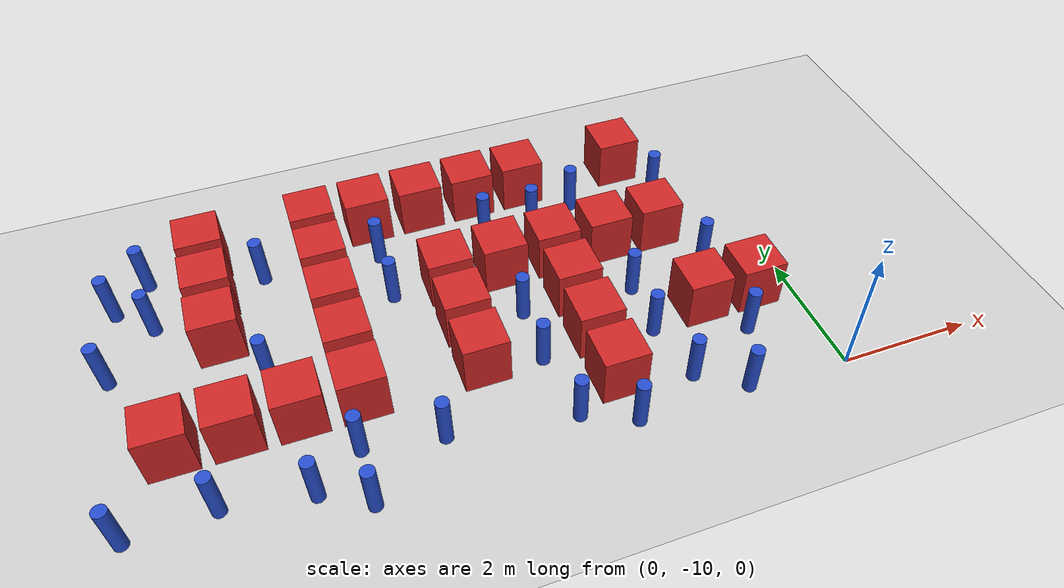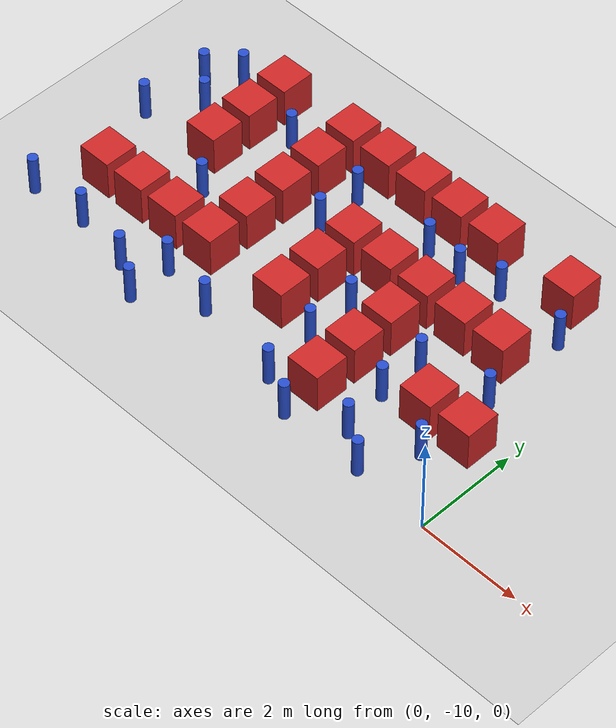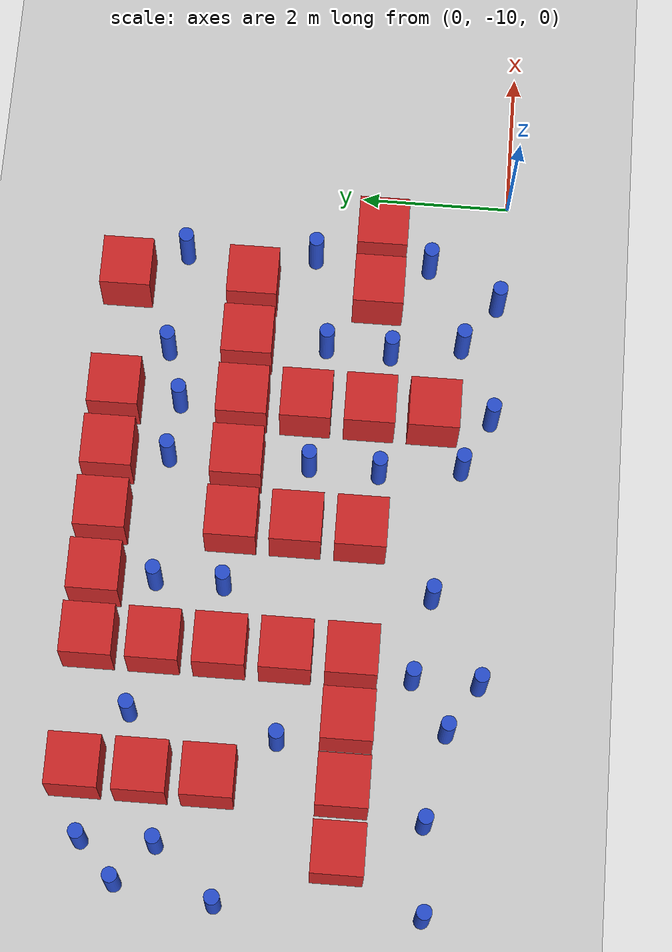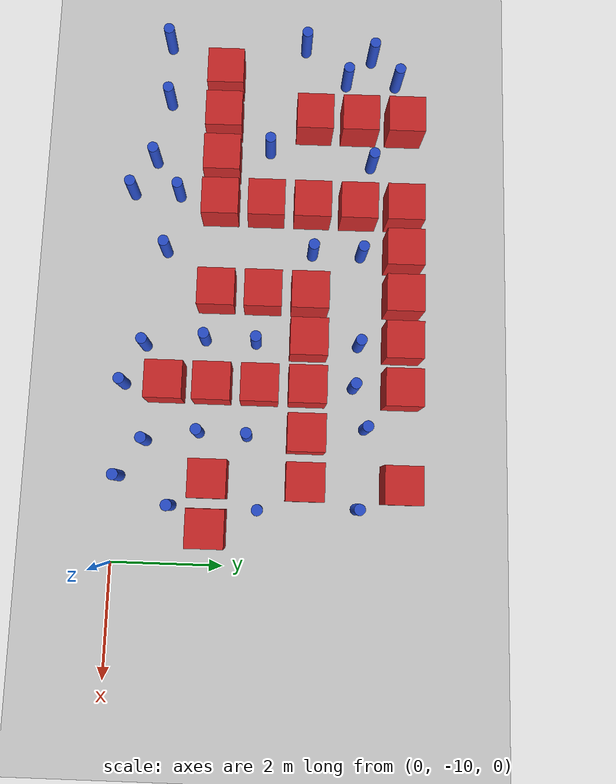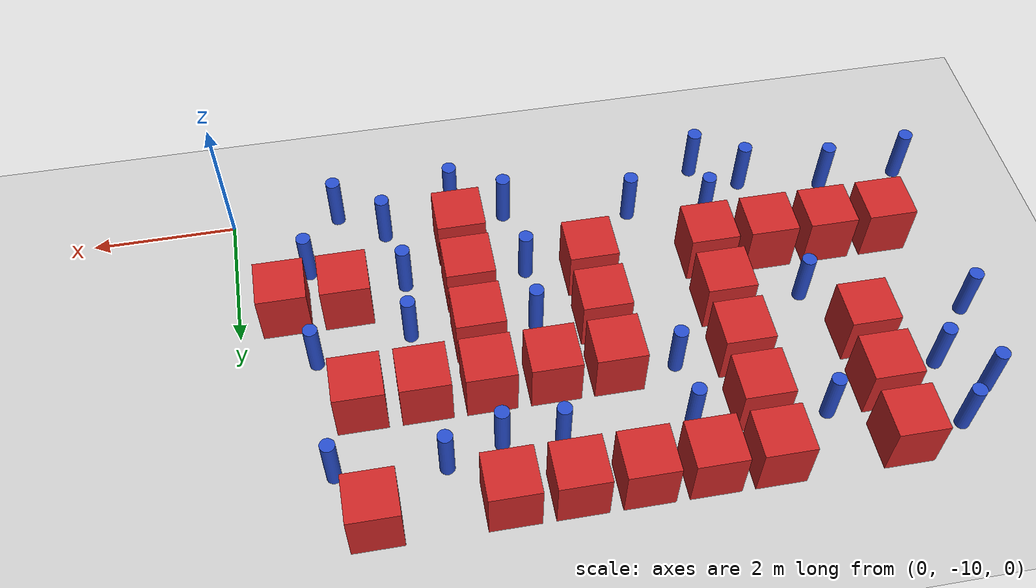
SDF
<sdf version="1.6">
 <world name="default">
  <model name="ground_plane">
   <static>1</static>
   <link name="link">
    <collision name="collision">
     <geometry><plane><normal>0 0 1</normal><size>100 100</size></plane></geometry>
     <surface><friction><ode><mu>100</mu><mu2>50</mu2></ode></friction></surface>
    </collision>
    <visual name="visual">
     <cast_shadows>0</cast_shadows>
     <geometry><plane><normal>0 0 1</normal><size>100 100</size></plane></geometry>
     <material>
      <script><uri>file://media/materials/scripts/gazebo.material</uri><name>Gazebo/Grey</name></script>
     </material>
    </visual>
   </link>
  </model>
  <model name="box_obstacle0">
   <static>0</static>
   <link name="link">
    <pose>0 0 0.1 0 -0 0</pose>
    <inertial>
     <mass>100</mass>
     <inertia>
      <ixx>0.166667</ixx>
      <ixy>0</ixy>
      <ixz>0</ixz>
      <iyy>0.166667</iyy>
      <iyz>0</iyz>
      <izz>0.166667</izz>
     </inertia>
    </inertial>
    <collision name="collision"><geometry><box><size>0.675 0.675 0.8</size></box></geometry></collision>
    <visual name="visual">
     <geometry><box><size>0.675 0.675 0.8</size></box></geometry>
     <material>
      <script><name>Gazebo/Red</name><uri>file://media/materials/scripts/gazebo.material</uri></script>
     </material>
    </visual>
   </link>
   <pose>-9.15097 -8.30135 0.299996 4e-06 -0 0.001125</pose>
  </model>
  <model name="box_obstacle2">
   <static>0</static>
   <link name="link">
    <pose>0 0 0.1 0 -0 0</pose>
    <inertial>
     <mass>100</mass>
     <inertia>
      <ixx>0.166667</ixx>
      <ixy>0</ixy>
      <ixz>0</ixz>
      <iyy>0.166667</iyy>
      <iyz>0</iyz>
      <izz>0.166667</izz>
     </inertia>
    </inertial>
    <collision name="collision"><geometry><box><size>0.675 0.675 0.8</size></box></geometry></collision>
    <visual name="visual">
     <geometry><box><size>0.675 0.675 0.8</size></box></geometry>
     <material>
      <script><name>Gazebo/Red</name><uri>file://media/materials/scripts/gazebo.material</uri></script>
     </material>
    </visual>
   </link>
   <pose>-8.30097 -8.30135 0.299996 4e-06 -0 0.001125</pose>
  </model>
  <model name="box_obstacle3">
   <static>0</static>
   <link name="link">
    <pose>0 0 0.1 0 -0 0</pose>
    <inertial>
     <mass>100</mass>
     <inertia>
      <ixx>0.166667</ixx>
      <ixy>0</ixy>
      <ixz>0</ixz>
      <iyy>0.166667</iyy>
      <iyz>0</iyz>
      <izz>0.166667</izz>
     </inertia>
    </inertial>
    <collision name="collision"><geometry><box><size>0.675 0.675 0.8</size></box></geometry></collision>
    <visual name="visual">
     <geometry><box><size>0.675 0.675 0.8</size></box></geometry>
     <material>
      <script><name>Gazebo/Red</name><uri>file://media/materials/scripts/gazebo.material</uri></script>
     </material>
    </visual>
   </link>
   <pose>-8.30097 -6.60135 0.299996 4e-06 -0 0.001125</pose>
  </model>
  <model name="box_obstacle4">
   <static>0</static>
   <link name="link">
    <pose>0 0 0.1 0 -0 0</pose>
    <inertial>
     <mass>100</mass>
     <inertia>
      <ixx>0.166667</ixx>
      <ixy>0</ixy>
      <ixz>0</ixz>
      <iyy>0.166667</iyy>
      <iyz>0</iyz>
      <izz>0.166667</izz>
     </inertia>
    </inertial>
    <collision name="collision"><geometry><box><size>0.675 0.675 0.8</size></box></geometry></collision>
    <visual name="visual">
     <geometry><box><size>0.675 0.675 0.8</size></box></geometry>
     <material>
      <script><name>Gazebo/Red</name><uri>file://media/materials/scripts/gazebo.material</uri></script>
     </material>
    </visual>
   </link>
   <pose>-8.30097 -5.75135 0.299996 4e-06 -0 0.001125</pose>
  </model>
  <model name="box_obstacle5">
   <static>0</static>
   <link name="link">
    <pose>0 0 0.1 0 -0 0</pose>
    <inertial>
     <mass>100</mass>
     <inertia>
      <ixx>0.166667</ixx>
      <ixy>0</ixy>
      <ixz>0</ixz>
      <iyy>0.166667</iyy>
      <iyz>0</iyz>
      <izz>0.166667</izz>
     </inertia>
    </inertial>
    <collision name="collision"><geometry><box><size>0.675 0.675 0.8</size></box></geometry></collision>
    <visual name="visual">
     <geometry><box><size>0.675 0.675 0.8</size></box></geometry>
     <material>
      <script><name>Gazebo/Red</name><uri>file://media/materials/scripts/gazebo.material</uri></script>
     </material>
    </visual>
   </link>
   <pose>-8.30097 -4.90135 0.299996 4e-06 -0 0.001125</pose>
  </model>
  <model name="box_obstacle19">
   <static>0</static>
   <link name="link">
    <pose>0 0 0.1 0 -0 0</pose>
    <inertial>
     <mass>100</mass>
     <inertia>
      <ixx>0.166667</ixx>
      <ixy>0</ixy>
      <ixz>0</ixz>
      <iyy>0.166667</iyy>
      <iyz>0</iyz>
      <izz>0.166667</izz>
     </inertia>
    </inertial>
    <collision name="collision"><geometry><box><size>0.675 0.675 0.8</size></box></geometry></collision>
    <visual name="visual">
     <geometry><box><size>0.675 0.675 0.8</size></box></geometry>
     <material>
      <script><name>Gazebo/Red</name><uri>file://media/materials/scripts/gazebo.material</uri></script>
     </material>
    </visual>
   </link>
   <pose>-7.45097 -8.30135 0.299996 4e-06 -0 0.001125</pose>
  </model>
  <model name="box_obstacle24">
   <static>0</static>
   <link name="link">
    <pose>0 0 0.1 0 -0 0</pose>
    <inertial>
     <mass>100</mass>
     <inertia>
      <ixx>0.166667</ixx>
      <ixy>0</ixy>
      <ixz>0</ixz>
      <iyy>0.166667</iyy>
      <iyz>0</iyz>
      <izz>0.166667</izz>
     </inertia>
    </inertial>
    <collision name="collision"><geometry><box><size>0.675 0.675 0.8</size></box></geometry></collision>
    <visual name="visual">
     <geometry><box><size>0.675 0.675 0.8</size></box></geometry>
     <material>
      <script><name>Gazebo/Red</name><uri>file://media/materials/scripts/gazebo.material</uri></script>
     </material>
    </visual>
   </link>
   <pose>-6.60097 -8.30135 0.299996 4e-06 -0 0.001125</pose>
  </model>
  <model name="box_obstacle25">
   <static>0</static>
   <link name="link">
    <pose>0 0 0.1 0 -0 0</pose>
    <inertial>
     <mass>100</mass>
     <inertia>
      <ixx>0.166667</ixx>
      <ixy>0</ixy>
      <ixz>0</ixz>
      <iyy>0.166667</iyy>
      <iyz>0</iyz>
      <izz>0.166667</izz>
     </inertia>
    </inertial>
    <collision name="collision"><geometry><box><size>0.675 0.675 0.8</size></box></geometry></collision>
    <visual name="visual">
     <geometry><box><size>0.675 0.675 0.8</size></box></geometry>
     <material>
      <script><name>Gazebo/Red</name><uri>file://media/materials/scripts/gazebo.material</uri></script>
     </material>
    </visual>
   </link>
   <pose>-6.60097 -7.45135 0.299996 4e-06 -0 0.001125</pose>
  </model>
  <model name="box_obstacle26">
   <static>0</static>
   <link name="link">
    <pose>0 0 0.1 0 -0 0</pose>
    <inertial>
     <mass>100</mass>
     <inertia>
      <ixx>0.166667</ixx>
      <ixy>0</ixy>
      <ixz>0</ixz>
      <iyy>0.166667</iyy>
      <iyz>0</iyz>
      <izz>0.166667</izz>
     </inertia>
    </inertial>
    <collision name="collision"><geometry><box><size>0.675 0.675 0.8</size></box></geometry></collision>
    <visual name="visual">
     <geometry><box><size>0.675 0.675 0.8</size></box></geometry>
     <material>
      <script><name>Gazebo/Red</name><uri>file://media/materials/scripts/gazebo.material</uri></script>
     </material>
    </visual>
   </link>
   <pose>-6.60097 -6.60135 0.299996 4e-06 -0 0.001125</pose>
  </model>
  <model name="box_obstacle27">
   <static>0</static>
   <link name="link">
    <pose>0 0 0.1 0 -0 0</pose>
    <inertial>
     <mass>100</mass>
     <inertia>
      <ixx>0.166667</ixx>
      <ixy>0</ixy>
      <ixz>0</ixz>
      <iyy>0.166667</iyy>
      <iyz>0</iyz>
      <izz>0.166667</izz>
     </inertia>
    </inertial>
    <collision name="collision"><geometry><box><size>0.675 0.675 0.8</size></box></geometry></collision>
    <visual name="visual">
     <geometry><box><size>0.675 0.675 0.8</size></box></geometry>
     <material>
      <script><name>Gazebo/Red</name><uri>file://media/materials/scripts/gazebo.material</uri></script>
     </material>
    </visual>
   </link>
   <pose>-6.60097 -5.75135 0.299996 4e-06 -0 0.001125</pose>
  </model>
  <model name="box_obstacle28">
   <static>0</static>
   <link name="link">
    <pose>0 0 0.1 0 -0 0</pose>
    <inertial>
     <mass>100</mass>
     <inertia>
      <ixx>0.166667</ixx>
      <ixy>0</ixy>
      <ixz>0</ixz>
      <iyy>0.166667</iyy>
      <iyz>0</iyz>
      <izz>0.166667</izz>
     </inertia>
    </inertial>
    <collision name="collision"><geometry><box><size>0.675 0.675 0.8</size></box></geometry></collision>
    <visual name="visual">
     <geometry><box><size>0.675 0.675 0.8</size></box></geometry>
     <material>
      <script><name>Gazebo/Red</name><uri>file://media/materials/scripts/gazebo.material</uri></script>
     </material>
    </visual>
   </link>
   <pose>-6.60097 -4.90135 0.299996 4e-06 -0 0.001125</pose>
  </model>
  <model name="box_obstacle42">
   <static>0</static>
   <link name="link">
    <pose>0 0 0.1 0 -0 0</pose>
    <inertial>
     <mass>100</mass>
     <inertia>
      <ixx>0.166667</ixx>
      <ixy>0</ixy>
      <ixz>0</ixz>
      <iyy>0.166667</iyy>
      <iyz>0</iyz>
      <izz>0.166667</izz>
     </inertia>
    </inertial>
    <collision name="collision"><geometry><box><size>0.675 0.675 0.8</size></box></geometry></collision>
    <visual name="visual">
     <geometry><box><size>0.675 0.675 0.8</size></box></geometry>
     <material>
      <script><name>Gazebo/Red</name><uri>file://media/materials/scripts/gazebo.material</uri></script>
     </material>
    </visual>
   </link>
   <pose>-5.75097 -4.90135 0.299996 4e-06 -0 0.001125</pose>
  </model>
  <model name="box_obstacle45">
   <static>0</static>
   <link name="link">
    <pose>0 0 0.1 0 -0 0</pose>
    <inertial>
     <mass>100</mass>
     <inertia>
      <ixx>0.166667</ixx>
      <ixy>0</ixy>
      <ixz>0</ixz>
      <iyy>0.166667</iyy>
      <iyz>0</iyz>
      <izz>0.166667</izz>
     </inertia>
    </inertial>
    <collision name="collision"><geometry><box><size>0.675 0.675 0.8</size></box></geometry></collision>
    <visual name="visual">
     <geometry><box><size>0.675 0.675 0.8</size></box></geometry>
     <material>
      <script><name>Gazebo/Red</name><uri>file://media/materials/scripts/gazebo.material</uri></script>
     </material>
    </visual>
   </link>
   <pose>-4.90097 -8.30135 0.299996 4e-06 -0 0.001125</pose>
  </model>
  <model name="box_obstacle46">
   <static>0</static>
   <link name="link">
    <pose>0 0 0.1 0 -0 0</pose>
    <inertial>
     <mass>100</mass>
     <inertia>
      <ixx>0.166667</ixx>
      <ixy>0</ixy>
      <ixz>0</ixz>
      <iyy>0.166667</iyy>
      <iyz>0</iyz>
      <izz>0.166667</izz>
     </inertia>
    </inertial>
    <collision name="collision"><geometry><box><size>0.675 0.675 0.8</size></box></geometry></collision>
    <visual name="visual">
     <geometry><box><size>0.675 0.675 0.8</size></box></geometry>
     <material>
      <script><name>Gazebo/Red</name><uri>file://media/materials/scripts/gazebo.material</uri></script>
     </material>
    </visual>
   </link>
   <pose>-4.90097 -7.45135 0.299996 4e-06 -0 0.001125</pose>
  </model>
  <model name="box_obstacle47">
   <static>0</static>
   <link name="link">
    <pose>0 0 0.1 0 -0 0</pose>
    <inertial>
     <mass>100</mass>
     <inertia>
      <ixx>0.166667</ixx>
      <ixy>0</ixy>
      <ixz>0</ixz>
      <iyy>0.166667</iyy>
      <iyz>0</iyz>
      <izz>0.166667</izz>
     </inertia>
    </inertial>
    <collision name="collision"><geometry><box><size>0.675 0.675 0.8</size></box></geometry></collision>
    <visual name="visual">
     <geometry><box><size>0.675 0.675 0.8</size></box></geometry>
     <material>
      <script><name>Gazebo/Red</name><uri>file://media/materials/scripts/gazebo.material</uri></script>
     </material>
    </visual>
   </link>
   <pose>-4.90097 -6.60135 0.299996 4e-06 -0 0.001125</pose>
  </model>
  <model name="box_obstacle48">
   <static>0</static>
   <link name="link">
    <pose>0 0 0.1 0 -0 0</pose>
    <inertial>
     <mass>100</mass>
     <inertia>
      <ixx>0.166667</ixx>
      <ixy>0</ixy>
      <ixz>0</ixz>
      <iyy>0.166667</iyy>
      <iyz>0</iyz>
      <izz>0.166667</izz>
     </inertia>
    </inertial>
    <collision name="collision"><geometry><box><size>0.675 0.675 0.8</size></box></geometry></collision>
    <visual name="visual">
     <geometry><box><size>0.675 0.675 0.8</size></box></geometry>
     <material>
      <script><name>Gazebo/Red</name><uri>file://media/materials/scripts/gazebo.material</uri></script>
     </material>
    </visual>
   </link>
   <pose>-4.90097 -4.90135 0.299996 4e-06 -0 0.001125</pose>
  </model>
  <model name="box_obstacle63">
   <static>0</static>
   <link name="link">
    <pose>0 0 0.1 0 -0 0</pose>
    <inertial>
     <mass>100</mass>
     <inertia>
      <ixx>0.166667</ixx>
      <ixy>0</ixy>
      <ixz>0</ixz>
      <iyy>0.166667</iyy>
      <iyz>0</iyz>
      <izz>0.166667</izz>
     </inertia>
    </inertial>
    <collision name="collision"><geometry><box><size>0.675 0.675 0.8</size></box></geometry></collision>
    <visual name="visual">
     <geometry><box><size>0.675 0.675 0.8</size></box></geometry>
     <material>
      <script><name>Gazebo/Red</name><uri>file://media/materials/scripts/gazebo.material</uri></script>
     </material>
    </visual>
   </link>
   <pose>-4.05097 -6.60135 0.299996 4e-06 -0 0.001125</pose>
  </model>
  <model name="box_obstacle64">
   <static>0</static>
   <link name="link">
    <pose>0 0 0.1 0 -0 0</pose>
    <inertial>
     <mass>100</mass>
     <inertia>
      <ixx>0.166667</ixx>
      <ixy>0</ixy>
      <ixz>0</ixz>
      <iyy>0.166667</iyy>
      <iyz>0</iyz>
      <izz>0.166667</izz>
     </inertia>
    </inertial>
    <collision name="collision"><geometry><box><size>0.675 0.675 0.8</size></box></geometry></collision>
    <visual name="visual">
     <geometry><box><size>0.675 0.675 0.8</size></box></geometry>
     <material>
      <script><name>Gazebo/Red</name><uri>file://media/materials/scripts/gazebo.material</uri></script>
     </material>
    </visual>
   </link>
   <pose>-4.05097 -4.90135 0.299996 4e-06 -0 0.001125</pose>
  </model>
  <model name="box_obstacle68">
   <static>0</static>
   <link name="link">
    <pose>0 0 0.1 0 -0 0</pose>
    <inertial>
     <mass>100</mass>
     <inertia>
      <ixx>0.166667</ixx>
      <ixy>0</ixy>
      <ixz>0</ixz>
      <iyy>0.166667</iyy>
      <iyz>0</iyz>
      <izz>0.166667</izz>
     </inertia>
    </inertial>
    <collision name="collision"><geometry><box><size>0.675 0.675 0.8</size></box></geometry></collision>
    <visual name="visual">
     <geometry><box><size>0.675 0.675 0.8</size></box></geometry>
     <material>
      <script><name>Gazebo/Red</name><uri>file://media/materials/scripts/gazebo.material</uri></script>
     </material>
    </visual>
   </link>
   <pose>-3.20097 -9.15135 0.299996 4e-06 -0 0.001125</pose>
  </model>
  <model name="box_obstacle69">
   <static>0</static>
   <link name="link">
    <pose>0 0 0.1 0 -0 0</pose>
    <inertial>
     <mass>100</mass>
     <inertia>
      <ixx>0.166667</ixx>
      <ixy>0</ixy>
      <ixz>0</ixz>
      <iyy>0.166667</iyy>
      <iyz>0</iyz>
      <izz>0.166667</izz>
     </inertia>
    </inertial>
    <collision name="collision"><geometry><box><size>0.675 0.675 0.8</size></box></geometry></collision>
    <visual name="visual">
     <geometry><box><size>0.675 0.675 0.8</size></box></geometry>
     <material>
      <script><name>Gazebo/Red</name><uri>file://media/materials/scripts/gazebo.material</uri></script>
     </material>
    </visual>
   </link>
   <pose>-3.20097 -8.30135 0.299996 4e-06 -0 0.001125</pose>
  </model>
  <model name="box_obstacle70">
   <static>0</static>
   <link name="link">
    <pose>0 0 0.1 0 -0 0</pose>
    <inertial>
     <mass>100</mass>
     <inertia>
      <ixx>0.166667</ixx>
      <ixy>0</ixy>
      <ixz>0</ixz>
      <iyy>0.166667</iyy>
      <iyz>0</iyz>
      <izz>0.166667</izz>
     </inertia>
    </inertial>
    <collision name="collision"><geometry><box><size>0.675 0.675 0.8</size></box></geometry></collision>
    <visual name="visual">
     <geometry><box><size>0.675 0.675 0.8</size></box></geometry>
     <material>
      <script><name>Gazebo/Red</name><uri>file://media/materials/scripts/gazebo.material</uri></script>
     </material>
    </visual>
   </link>
   <pose>-3.20097 -7.45135 0.299996 4e-06 -0 0.001125</pose>
  </model>
  <model name="box_obstacle71">
   <static>0</static>
   <link name="link">
    <pose>0 0 0.1 0 -0 0</pose>
    <inertial>
     <mass>100</mass>
     <inertia>
      <ixx>0.166667</ixx>
      <ixy>0</ixy>
      <ixz>0</ixz>
      <iyy>0.166667</iyy>
      <iyz>0</iyz>
      <izz>0.166667</izz>
     </inertia>
    </inertial>
    <collision name="collision"><geometry><box><size>0.675 0.675 0.8</size></box></geometry></collision>
    <visual name="visual">
     <geometry><box><size>0.675 0.675 0.8</size></box></geometry>
     <material>
      <script><name>Gazebo/Red</name><uri>file://media/materials/scripts/gazebo.material</uri></script>
     </material>
    </visual>
   </link>
   <pose>-3.20097 -6.60135 0.299996 4e-06 -0 0.001125</pose>
  </model>
  <model name="box_obstacle72">
   <static>0</static>
   <link name="link">
    <pose>0 0 0.1 0 -0 0</pose>
    <inertial>
     <mass>100</mass>
     <inertia>
      <ixx>0.166667</ixx>
      <ixy>0</ixy>
      <ixz>0</ixz>
      <iyy>0.166667</iyy>
      <iyz>0</iyz>
      <izz>0.166667</izz>
     </inertia>
    </inertial>
    <collision name="collision"><geometry><box><size>0.675 0.675 0.8</size></box></geometry></collision>
    <visual name="visual">
     <geometry><box><size>0.675 0.675 0.8</size></box></geometry>
     <material>
      <script><name>Gazebo/Red</name><uri>file://media/materials/scripts/gazebo.material</uri></script>
     </material>
    </visual>
   </link>
   <pose>-3.20097 -4.90135 0.299996 4e-06 -0 0.001125</pose>
  </model>
  <model name="box_obstacle85">
   <static>0</static>
   <link name="link">
    <pose>0 0 0.1 0 -0 0</pose>
    <inertial>
     <mass>100</mass>
     <inertia>
      <ixx>0.166667</ixx>
      <ixy>0</ixy>
      <ixz>0</ixz>
      <iyy>0.166667</iyy>
      <iyz>0</iyz>
      <izz>0.166667</izz>
     </inertia>
    </inertial>
    <collision name="collision"><geometry><box><size>0.675 0.675 0.8</size></box></geometry></collision>
    <visual name="visual">
     <geometry><box><size>0.675 0.675 0.8</size></box></geometry>
     <material>
      <script><name>Gazebo/Red</name><uri>file://media/materials/scripts/gazebo.material</uri></script>
     </material>
    </visual>
   </link>
   <pose>-2.35097 -6.60135 0.299996 4e-06 -0 0.001125</pose>
  </model>
  <model name="box_obstacle91">
   <static>0</static>
   <link name="link">
    <pose>0 0 0.1 0 -0 0</pose>
    <inertial>
     <mass>100</mass>
     <inertia>
      <ixx>0.166667</ixx>
      <ixy>0</ixy>
      <ixz>0</ixz>
      <iyy>0.166667</iyy>
      <iyz>0</iyz>
      <izz>0.166667</izz>
     </inertia>
    </inertial>
    <collision name="collision"><geometry><box><size>0.675 0.675 0.8</size></box></geometry></collision>
    <visual name="visual">
     <geometry><box><size>0.675 0.675 0.8</size></box></geometry>
     <material>
      <script><name>Gazebo/Red</name><uri>file://media/materials/scripts/gazebo.material</uri></script>
     </material>
    </visual>
   </link>
   <pose>-1.50097 -8.30135 0.299996 4e-06 -0 0.001125</pose>
  </model>
  <model name="box_obstacle92">
   <static>0</static>
   <link name="link">
    <pose>0 0 0.1 0 -0 0</pose>
    <inertial>
     <mass>100</mass>
     <inertia>
      <ixx>0.166667</ixx>
      <ixy>0</ixy>
      <ixz>0</ixz>
      <iyy>0.166667</iyy>
      <iyz>0</iyz>
      <izz>0.166667</izz>
     </inertia>
    </inertial>
    <collision name="collision"><geometry><box><size>0.675 0.675 0.8</size></box></geometry></collision>
    <visual name="visual">
     <geometry><box><size>0.675 0.675 0.8</size></box></geometry>
     <material>
      <script><name>Gazebo/Red</name><uri>file://media/materials/scripts/gazebo.material</uri></script>
     </material>
    </visual>
   </link>
   <pose>-1.50097 -6.60135 0.299996 4e-06 -0 0.001125</pose>
  </model>
  <model name="box_obstacle93">
   <static>0</static>
   <link name="link">
    <pose>0 0 0.1 0 -0 0</pose>
    <inertial>
     <mass>100</mass>
     <inertia>
      <ixx>0.166667</ixx>
      <ixy>0</ixy>
      <ixz>0</ixz>
      <iyy>0.166667</iyy>
      <iyz>0</iyz>
      <izz>0.166667</izz>
     </inertia>
    </inertial>
    <collision name="collision"><geometry><box><size>0.675 0.675 0.8</size></box></geometry></collision>
    <visual name="visual">
     <geometry><box><size>0.675 0.675 0.8</size></box></geometry>
     <material>
      <script><name>Gazebo/Red</name><uri>file://media/materials/scripts/gazebo.material</uri></script>
     </material>
    </visual>
   </link>
   <pose>-1.50097 -4.90135 0.299996 4e-06 -0 0.001125</pose>
  </model>
  <model name="box_obstacle106">
   <static>0</static>
   <link name="link">
    <pose>0 0 0.1 0 -0 0</pose>
    <inertial>
     <mass>100</mass>
     <inertia>
      <ixx>0.166667</ixx>
      <ixy>0</ixy>
      <ixz>0</ixz>
      <iyy>0.166667</iyy>
      <iyz>0</iyz>
      <izz>0.166667</izz>
     </inertia>
    </inertial>
    <collision name="collision"><geometry><box><size>0.675 0.675 0.8</size></box></geometry></collision>
    <visual name="visual">
     <geometry><box><size>0.675 0.675 0.8</size></box></geometry>
     <material>
      <script><name>Gazebo/Red</name><uri>file://media/materials/scripts/gazebo.material</uri></script>
     </material>
    </visual>
   </link>
   <pose>-0.65097 -8.30135 0.299996 4e-06 -0 0.001125</pose>
  </model>
  <model name="cylinder_obstacle0">
   <static>0</static>
   <link name="link">
    <pose>0 0 1 0 -0 0</pose>
    <inertial>
     <mass>100</mass>
     <inertia>
      <ixx>0.166667</ixx>
      <ixy>0</ixy>
      <ixz>0</ixz>
      <iyy>0.166667</iyy>
      <iyz>0</iyz>
      <izz>0.166667</izz>
     </inertia>
    </inertial>
    <collision name="collision">
     <geometry><cylinder><radius>0.1</radius><length>0.8</length></cylinder></geometry>
    </collision>
    <visual name="visual">
     <geometry><cylinder><radius>0.1</radius><length>0.8</length></cylinder></geometry>
     <material>
      <script><name>Gazebo/Blue</name><uri>file://media/materials/scripts/gazebo.material</uri></script>
     </material>
    </visual>
   </link>
   <pose>-9.70214 -5.51207 -0.6 3e-06 1e-06 -0.005521</pose>
  </model>
  <model name="cylinder_obstacle3">
   <static>0</static>
   <link name="link">
    <pose>0 0 1 0 -0 0</pose>
    <inertial>
     <mass>100</mass>
     <inertia>
      <ixx>0.166667</ixx>
      <ixy>0</ixy>
      <ixz>0</ixz>
      <iyy>0.166667</iyy>
      <iyz>0</iyz>
      <izz>0.166667</izz>
     </inertia>
    </inertial>
    <collision name="collision">
     <geometry><cylinder><radius>0.1</radius><length>0.8</length></cylinder></geometry>
    </collision>
    <visual name="visual">
     <geometry><cylinder><radius>0.1</radius><length>0.8</length></cylinder></geometry>
     <material>
      <script><name>Gazebo/Blue</name><uri>file://media/materials/scripts/gazebo.material</uri></script>
     </material>
    </visual>
   </link>
   <pose>-3.90748 -9.57105 -0.6 3e-06 1e-06 0.002375</pose>
  </model>
  <model name="cylinder_obstacle7">
   <static>0</static>
   <link name="link">
    <pose>0 0 1 0 -0 0</pose>
    <inertial>
     <mass>100</mass>
     <inertia>
      <ixx>0.166667</ixx>
      <ixy>0</ixy>
      <ixz>0</ixz>
      <iyy>0.166667</iyy>
      <iyz>0</iyz>
      <izz>0.166667</izz>
     </inertia>
    </inertial>
    <collision name="collision">
     <geometry><cylinder><radius>0.1</radius><length>0.8</length></cylinder></geometry>
    </collision>
    <visual name="visual">
     <geometry><cylinder><radius>0.1</radius><length>0.8</length></cylinder></geometry>
     <material>
      <script><name>Gazebo/Blue</name><uri>file://media/materials/scripts/gazebo.material</uri></script>
     </material>
    </visual>
   </link>
   <pose>-7.51294 -5.49536 -0.6 3e-06 1e-06 0.003884</pose>
  </model>
  <model name="cylinder_obstacle10">
   <static>0</static>
   <link name="link">
    <pose>0 0 1 0 -0 0</pose>
    <inertial>
     <mass>100</mass>
     <inertia>
      <ixx>0.166667</ixx>
      <ixy>0</ixy>
      <ixz>0</ixz>
      <iyy>0.166667</iyy>
      <iyz>0</iyz>
      <izz>0.166667</izz>
     </inertia>
    </inertial>
    <collision name="collision">
     <geometry><cylinder><radius>0.1</radius><length>0.8</length></cylinder></geometry>
    </collision>
    <visual name="visual">
     <geometry><cylinder><radius>0.1</radius><length>0.8</length></cylinder></geometry>
     <material>
      <script><name>Gazebo/Blue</name><uri>file://media/materials/scripts/gazebo.material</uri></script>
     </material>
    </visual>
   </link>
   <pose>-9.85785 -9.40711 -0.6 3e-06 1e-06 0.003884</pose>
  </model>
  <model name="cylinder_obstacle11">
   <static>0</static>
   <link name="link">
    <pose>0 0 1 0 -0 0</pose>
    <inertial>
     <mass>100</mass>
     <inertia>
      <ixx>0.166667</ixx>
      <ixy>0</ixy>
      <ixz>0</ixz>
      <iyy>0.166667</iyy>
      <iyz>0</iyz>
      <izz>0.166667</izz>
     </inertia>
    </inertial>
    <collision name="collision">
     <geometry><cylinder><radius>0.1</radius><length>0.8</length></cylinder></geometry>
    </collision>
    <visual name="visual">
     <geometry><cylinder><radius>0.1</radius><length>0.8</length></cylinder></geometry>
     <material>
      <script><name>Gazebo/Blue</name><uri>file://media/materials/scripts/gazebo.material</uri></script>
     </material>
    </visual>
   </link>
   <pose>-5.73428 -5.66202 -0.6 3e-06 1e-06 0.003884</pose>
  </model>
  <model name="cylinder_obstacle13">
   <static>0</static>
   <link name="link">
    <pose>0 0 1 0 -0 0</pose>
    <inertial>
     <mass>100</mass>
     <inertia>
      <ixx>0.166667</ixx>
      <ixy>0</ixy>
      <ixz>0</ixz>
      <iyy>0.166667</iyy>
      <iyz>0</iyz>
      <izz>0.166667</izz>
     </inertia>
    </inertial>
    <collision name="collision">
     <geometry><cylinder><radius>0.1</radius><length>0.8</length></cylinder></geometry>
    </collision>
    <visual name="visual">
     <geometry><cylinder><radius>0.1</radius><length>0.8</length></cylinder></geometry>
     <material>
      <script><name>Gazebo/Blue</name><uri>file://media/materials/scripts/gazebo.material</uri></script>
     </material>
    </visual>
   </link>
   <pose>-8.67734 -9.35783 -0.6 3e-06 1e-06 0.003884</pose>
  </model>
  <model name="cylinder_obstacle17">
   <static>0</static>
   <link name="link">
    <pose>0 0 1 0 -0 0</pose>
    <inertial>
     <mass>100</mass>
     <inertia>
      <ixx>0.166667</ixx>
      <ixy>0</ixy>
      <ixz>0</ixz>
      <iyy>0.166667</iyy>
      <iyz>0</iyz>
      <izz>0.166667</izz>
     </inertia>
    </inertial>
    <collision name="collision">
     <geometry><cylinder><radius>0.1</radius><length>0.8</length></cylinder></geometry>
    </collision>
    <visual name="visual">
     <geometry><cylinder><radius>0.1</radius><length>0.8</length></cylinder></geometry>
     <material>
      <script><name>Gazebo/Blue</name><uri>file://media/materials/scripts/gazebo.material</uri></script>
     </material>
    </visual>
   </link>
   <pose>-5.73724 -6.56105 -0.6 3e-06 1e-06 0.003884</pose>
  </model>
  <model name="cylinder_obstacle18">
   <static>0</static>
   <link name="link">
    <pose>0 0 1 0 -0 0</pose>
    <inertial>
     <mass>100</mass>
     <inertia>
      <ixx>0.166667</ixx>
      <ixy>0</ixy>
      <ixz>0</ixz>
      <iyy>0.166667</iyy>
      <iyz>0</iyz>
      <izz>0.166667</izz>
     </inertia>
    </inertial>
    <collision name="collision">
     <geometry><cylinder><radius>0.1</radius><length>0.8</length></cylinder></geometry>
    </collision>
    <visual name="visual">
     <geometry><cylinder><radius>0.1</radius><length>0.8</length></cylinder></geometry>
     <material>
      <script><name>Gazebo/Blue</name><uri>file://media/materials/scripts/gazebo.material</uri></script>
     </material>
    </visual>
   </link>
   <pose>-7.48011 -9.57381 -0.6 3e-06 1e-06 -0.001107</pose>
  </model>
  <model name="cylinder_obstacle24">
   <static>0</static>
   <link name="link">
    <pose>0 0 1 0 -0 0</pose>
    <inertial>
     <mass>100</mass>
     <inertia>
      <ixx>0.166667</ixx>
      <ixy>0</ixy>
      <ixz>0</ixz>
      <iyy>0.166667</iyy>
      <iyz>0</iyz>
      <izz>0.166667</izz>
     </inertia>
    </inertial>
    <collision name="collision">
     <geometry><cylinder><radius>0.1</radius><length>0.8</length></cylinder></geometry>
    </collision>
    <visual name="visual">
     <geometry><cylinder><radius>0.1</radius><length>0.8</length></cylinder></geometry>
     <material>
      <script><name>Gazebo/Blue</name><uri>file://media/materials/scripts/gazebo.material</uri></script>
     </material>
    </visual>
   </link>
   <pose>-2.16303 -9.47996 -0.6 3e-06 1e-06 0.003884</pose>
  </model>
  <model name="cylinder_obstacle27">
   <static>0</static>
   <link name="link">
    <pose>0 0 1 0 -0 0</pose>
    <inertial>
     <mass>100</mass>
     <inertia>
      <ixx>0.166667</ixx>
      <ixy>0</ixy>
      <ixz>0</ixz>
      <iyy>0.166667</iyy>
      <iyz>0</iyz>
      <izz>0.166667</izz>
     </inertia>
    </inertial>
    <collision name="collision">
     <geometry><cylinder><radius>0.1</radius><length>0.8</length></cylinder></geometry>
    </collision>
    <visual name="visual">
     <geometry><cylinder><radius>0.1</radius><length>0.8</length></cylinder></geometry>
     <material>
      <script><name>Gazebo/Blue</name><uri>file://media/materials/scripts/gazebo.material</uri></script>
     </material>
    </visual>
   </link>
   <pose>-9.18516 -5.99322 -0.6 3e-06 1e-06 0.003884</pose>
  </model>
  <model name="cylinder_obstacle30">
   <static>0</static>
   <link name="link">
    <pose>0 0 1 0 -0 0</pose>
    <inertial>
     <mass>100</mass>
     <inertia>
      <ixx>0.166667</ixx>
      <ixy>0</ixy>
      <ixz>0</ixz>
      <iyy>0.166667</iyy>
      <iyz>0</iyz>
      <izz>0.166667</izz>
     </inertia>
    </inertial>
    <collision name="collision">
     <geometry><cylinder><radius>0.1</radius><length>0.8</length></cylinder></geometry>
    </collision>
    <visual name="visual">
     <geometry><cylinder><radius>0.1</radius><length>0.8</length></cylinder></geometry>
     <material>
      <script><name>Gazebo/Blue</name><uri>file://media/materials/scripts/gazebo.material</uri></script>
     </material>
    </visual>
   </link>
   <pose>-2.49267 -5.53894 -0.6 3e-06 1e-06 0.003884</pose>
  </model>
  <model name="cylinder_obstacle34">
   <static>0</static>
   <link name="link">
    <pose>0 0 1 0 -0 0</pose>
    <inertial>
     <mass>100</mass>
     <inertia>
      <ixx>0.166667</ixx>
      <ixy>0</ixy>
      <ixz>0</ixz>
      <iyy>0.166667</iyy>
      <iyz>0</iyz>
      <izz>0.166667</izz>
     </inertia>
    </inertial>
    <collision name="collision">
     <geometry><cylinder><radius>0.1</radius><length>0.8</length></cylinder></geometry>
    </collision>
    <visual name="visual">
     <geometry><cylinder><radius>0.1</radius><length>0.8</length></cylinder></geometry>
     <material>
      <script><name>Gazebo/Blue</name><uri>file://media/materials/scripts/gazebo.material</uri></script>
     </material>
    </visual>
   </link>
   <pose>-1.0636 -5.66195 -0.6 3e-06 1e-06 0.003884</pose>
  </model>
  <model name="cylinder_obstacle41">
   <static>0</static>
   <link name="link">
    <pose>0 0 1 0 -0 0</pose>
    <inertial>
     <mass>100</mass>
     <inertia>
      <ixx>0.166667</ixx>
      <ixy>0</ixy>
      <ixz>0</ixz>
      <iyy>0.166667</iyy>
      <iyz>0</iyz>
      <izz>0.166667</izz>
     </inertia>
    </inertial>
    <collision name="collision">
     <geometry><cylinder><radius>0.1</radius><length>0.8</length></cylinder></geometry>
    </collision>
    <visual name="visual">
     <geometry><cylinder><radius>0.1</radius><length>0.8</length></cylinder></geometry>
     <material>
      <script><name>Gazebo/Blue</name><uri>file://media/materials/scripts/gazebo.material</uri></script>
     </material>
    </visual>
   </link>
   <pose>-5.70919 -9.28364 -0.6 3e-06 1e-06 0.003884</pose>
  </model>
  <model name="cylinder_obstacle45">
   <static>0</static>
   <link name="link">
    <pose>0 0 1 0 -0 0</pose>
    <inertial>
     <mass>100</mass>
     <inertia>
      <ixx>0.166667</ixx>
      <ixy>0</ixy>
      <ixz>0</ixz>
      <iyy>0.166667</iyy>
      <iyz>0</iyz>
      <izz>0.166667</izz>
     </inertia>
    </inertial>
    <collision name="collision">
     <geometry><cylinder><radius>0.1</radius><length>0.8</length></cylinder></geometry>
    </collision>
    <visual name="visual">
     <geometry><cylinder><radius>0.1</radius><length>0.8</length></cylinder></geometry>
     <material>
      <script><name>Gazebo/Blue</name><uri>file://media/materials/scripts/gazebo.material</uri></script>
     </material>
    </visual>
   </link>
   <pose>-2.30162 -7.65601 -0.6 3e-06 1e-06 0.003884</pose>
  </model>
  <model name="cylinder_obstacle47">
   <static>0</static>
   <link name="link">
    <pose>0 0 1 0 -0 0</pose>
    <inertial>
     <mass>100</mass>
     <inertia>
      <ixx>0.166667</ixx>
      <ixy>0</ixy>
      <ixz>0</ixz>
      <iyy>0.166667</iyy>
      <iyz>0</iyz>
      <izz>0.166667</izz>
     </inertia>
    </inertial>
    <collision name="collision">
     <geometry><cylinder><radius>0.1</radius><length>0.8</length></cylinder></geometry>
    </collision>
    <visual name="visual">
     <geometry><cylinder><radius>0.1</radius><length>0.8</length></cylinder></geometry>
     <material>
      <script><name>Gazebo/Blue</name><uri>file://media/materials/scripts/gazebo.material</uri></script>
     </material>
    </visual>
   </link>
   <pose>-0.994017 -7.41657 -0.6 3e-06 1e-06 0.003884</pose>
  </model>
  <model name="cylinder_obstacle52">
   <static>0</static>
   <link name="link">
    <pose>0 0 1 0 -0 0</pose>
    <inertial>
     <mass>100</mass>
     <inertia>
      <ixx>0.166667</ixx>
      <ixy>0</ixy>
      <ixz>0</ixz>
      <iyy>0.166667</iyy>
      <iyz>0</iyz>
      <izz>0.166667</izz>
     </inertia>
    </inertial>
    <collision name="collision">
     <geometry><cylinder><radius>0.1</radius><length>0.8</length></cylinder></geometry>
    </collision>
    <visual name="visual">
     <geometry><cylinder><radius>0.1</radius><length>0.8</length></cylinder></geometry>
     <material>
      <script><name>Gazebo/Blue</name><uri>file://media/materials/scripts/gazebo.material</uri></script>
     </material>
    </visual>
   </link>
   <pose>-9.87697 -6.79096 -0.6 3e-06 1e-06 0.003884</pose>
  </model>
  <model name="cylinder_obstacle54">
   <static>0</static>
   <link name="link">
    <pose>0 0 1 0 -0 0</pose>
    <inertial>
     <mass>100</mass>
     <inertia>
      <ixx>0.166667</ixx>
      <ixy>0</ixy>
      <ixz>0</ixz>
      <iyy>0.166667</iyy>
      <iyz>0</iyz>
      <izz>0.166667</izz>
     </inertia>
    </inertial>
    <collision name="collision">
     <geometry><cylinder><radius>0.1</radius><length>0.8</length></cylinder></geometry>
    </collision>
    <visual name="visual">
     <geometry><cylinder><radius>0.1</radius><length>0.8</length></cylinder></geometry>
     <material>
      <script><name>Gazebo/Blue</name><uri>file://media/materials/scripts/gazebo.material</uri></script>
     </material>
    </visual>
   </link>
   <pose>-4.01559 -5.67879 -0.6 3e-06 1e-06 0.003884</pose>
  </model>
  <model name="cylinder_obstacle61">
   <static>0</static>
   <link name="link">
    <pose>0 0 1 0 -0 0</pose>
    <inertial>
     <mass>100</mass>
     <inertia>
      <ixx>0.166667</ixx>
      <ixy>0</ixy>
      <ixz>0</ixz>
      <iyy>0.166667</iyy>
      <iyz>0</iyz>
      <izz>0.166667</izz>
     </inertia>
    </inertial>
    <collision name="collision">
     <geometry><cylinder><radius>0.1</radius><length>0.8</length></cylinder></geometry>
    </collision>
    <visual name="visual">
     <geometry><cylinder><radius>0.1</radius><length>0.8</length></cylinder></geometry>
     <material>
      <script><name>Gazebo/Blue</name><uri>file://media/materials/scripts/gazebo.material</uri></script>
     </material>
    </visual>
   </link>
   <pose>-6.82633 -9.95865 -0.6 3e-06 1e-06 0.003884</pose>
  </model>
  <model name="cylinder_obstacle69">
   <static>0</static>
   <link name="link">
    <pose>0 0 1 0 -0 0</pose>
    <inertial>
     <mass>100</mass>
     <inertia>
      <ixx>0.166667</ixx>
      <ixy>0</ixy>
      <ixz>0</ixz>
      <iyy>0.166667</iyy>
      <iyz>0</iyz>
      <izz>0.166667</izz>
     </inertia>
    </inertial>
    <collision name="collision">
     <geometry><cylinder><radius>0.1</radius><length>0.8</length></cylinder></geometry>
    </collision>
    <visual name="visual">
     <geometry><cylinder><radius>0.1</radius><length>0.8</length></cylinder></geometry>
     <material>
      <script><name>Gazebo/Blue</name><uri>file://media/materials/scripts/gazebo.material</uri></script>
     </material>
    </visual>
   </link>
   <pose>-3.18311 -9.92389 -0.6 3e-06 1e-06 -0.001246</pose>
  </model>
  <model name="cylinder_obstacle70">
   <static>0</static>
   <link name="link">
    <pose>0 0 1 0 -0 0</pose>
    <inertial>
     <mass>100</mass>
     <inertia>
      <ixx>0.166667</ixx>
      <ixy>0</ixy>
      <ixz>0</ixz>
      <iyy>0.166667</iyy>
      <iyz>0</iyz>
      <izz>0.166667</izz>
     </inertia>
    </inertial>
    <collision name="collision">
     <geometry><cylinder><radius>0.1</radius><length>0.8</length></cylinder></geometry>
    </collision>
    <visual name="visual">
     <geometry><cylinder><radius>0.1</radius><length>0.8</length></cylinder></geometry>
     <material>
      <script><name>Gazebo/Blue</name><uri>file://media/materials/scripts/gazebo.material</uri></script>
     </material>
    </visual>
   </link>
   <pose>-4.04088 -8.47998 -0.6 3e-06 1e-06 0.003884</pose>
  </model>
  <model name="cylinder_obstacle79">
   <static>0</static>
   <link name="link">
    <pose>0 0 1 0 -0 0</pose>
    <inertial>
     <mass>100</mass>
     <inertia>
      <ixx>0.166667</ixx>
      <ixy>0</ixy>
      <ixz>0</ixz>
      <iyy>0.166667</iyy>
      <iyz>0</iyz>
      <izz>0.166667</izz>
     </inertia>
    </inertial>
    <collision name="collision">
     <geometry><cylinder><radius>0.1</radius><length>0.8</length></cylinder></geometry>
    </collision>
    <visual name="visual">
     <geometry><cylinder><radius>0.1</radius><length>0.8</length></cylinder></geometry>
     <material>
      <script><name>Gazebo/Blue</name><uri>file://media/materials/scripts/gazebo.material</uri></script>
     </material>
    </visual>
   </link>
   <pose>-3.23757 -5.75823 -0.6 3e-06 1e-06 0.003884</pose>
  </model>
  <model name="cylinder_obstacle80">
   <static>0</static>
   <link name="link">
    <pose>0 0 1 0 -0 0</pose>
    <inertial>
     <mass>100</mass>
     <inertia>
      <ixx>0.166667</ixx>
      <ixy>0</ixy>
      <ixz>0</ixz>
      <iyy>0.166667</iyy>
      <iyz>0</iyz>
      <izz>0.166667</izz>
     </inertia>
    </inertial>
    <collision name="collision">
     <geometry><cylinder><radius>0.1</radius><length>0.8</length></cylinder></geometry>
    </collision>
    <visual name="visual">
     <geometry><cylinder><radius>0.1</radius><length>0.8</length></cylinder></geometry>
     <material>
      <script><name>Gazebo/Blue</name><uri>file://media/materials/scripts/gazebo.material</uri></script>
     </material>
    </visual>
   </link>
   <pose>-9.19367 -5.03775 -0.6 3e-06 1e-06 0.003884</pose>
  </model>
  <model name="cylinder_obstacle81">
   <static>0</static>
   <link name="link">
    <pose>0 0 1 0 -0 0</pose>
    <inertial>
     <mass>100</mass>
     <inertia>
      <ixx>0.166667</ixx>
      <ixy>0</ixy>
      <ixz>0</ixz>
      <iyy>0.166667</iyy>
      <iyz>0</iyz>
      <izz>0.166667</izz>
     </inertia>
    </inertial>
    <collision name="collision">
     <geometry><cylinder><radius>0.1</radius><length>0.8</length></cylinder></geometry>
    </collision>
    <visual name="visual">
     <geometry><cylinder><radius>0.1</radius><length>0.8</length></cylinder></geometry>
     <material>
      <script><name>Gazebo/Blue</name><uri>file://media/materials/scripts/gazebo.material</uri></script>
     </material>
    </visual>
   </link>
   <pose>-4.01435 -7.55016 -0.6 3e-06 1e-06 0.003884</pose>
  </model>
  <model name="cylinder_obstacle83">
   <static>0</static>
   <link name="link">
    <pose>0 0 1 0 -0 0</pose>
    <inertial>
     <mass>100</mass>
     <inertia>
      <ixx>0.166667</ixx>
      <ixy>0</ixy>
      <ixz>0</ixz>
      <iyy>0.166667</iyy>
      <iyz>0</iyz>
      <izz>0.166667</izz>
     </inertia>
    </inertial>
    <collision name="collision">
     <geometry><cylinder><radius>0.1</radius><length>0.8</length></cylinder></geometry>
    </collision>
    <visual name="visual">
     <geometry><cylinder><radius>0.1</radius><length>0.8</length></cylinder></geometry>
     <material>
      <script><name>Gazebo/Blue</name><uri>file://media/materials/scripts/gazebo.material</uri></script>
     </material>
    </visual>
   </link>
   <pose>-1.51614 -9.9239 -0.6 3e-06 1e-06 -0.001215</pose>
  </model>
  <model name="cylinder_obstacle87">
   <static>0</static>
   <link name="link">
    <pose>0 0 1 0 -0 0</pose>
    <inertial>
     <mass>100</mass>
     <inertia>
      <ixx>0.166667</ixx>
      <ixy>0</ixy>
      <ixz>0</ixz>
      <iyy>0.166667</iyy>
      <iyz>0</iyz>
      <izz>0.166667</izz>
     </inertia>
    </inertial>
    <collision name="collision">
     <geometry><cylinder><radius>0.1</radius><length>0.8</length></cylinder></geometry>
    </collision>
    <visual name="visual">
     <geometry><cylinder><radius>0.1</radius><length>0.8</length></cylinder></geometry>
     <material>
      <script><name>Gazebo/Blue</name><uri>file://media/materials/scripts/gazebo.material</uri></script>
     </material>
    </visual>
   </link>
   <pose>-1.02576 -8.97287 -0.6 3e-06 1e-06 0.003884</pose>
  </model>
  <model name="cylinder_obstacle90">
   <static>0</static>
   <link name="link">
    <pose>0 0 1 0 -0 0</pose>
    <inertial>
     <mass>100</mass>
     <inertia>
      <ixx>0.166667</ixx>
      <ixy>0</ixy>
      <ixz>0</ixz>
      <iyy>0.166667</iyy>
      <iyz>0</iyz>
      <izz>0.166667</izz>
     </inertia>
    </inertial>
    <collision name="collision">
     <geometry><cylinder><radius>0.1</radius><length>0.8</length></cylinder></geometry>
    </collision>
    <visual name="visual">
     <geometry><cylinder><radius>0.1</radius><length>0.8</length></cylinder></geometry>
     <material>
      <script><name>Gazebo/Blue</name><uri>file://media/materials/scripts/gazebo.material</uri></script>
     </material>
    </visual>
   </link>
   <pose>-6.81555 -9.09362 -0.6 3e-06 1e-06 0.003884</pose>
  </model>
  <model name="cylinder_obstacle92">
   <static>0</static>
   <link name="link">
    <pose>0 0 1 0 -0 0</pose>
    <inertial>
     <mass>100</mass>
     <inertia>
      <ixx>0.166667</ixx>
      <ixy>0</ixy>
      <ixz>0</ixz>
      <iyy>0.166667</iyy>
      <iyz>0</iyz>
      <izz>0.166667</izz>
     </inertia>
    </inertial>
    <collision name="collision">
     <geometry><cylinder><radius>0.1</radius><length>0.8</length></cylinder></geometry>
    </collision>
    <visual name="visual">
     <geometry><cylinder><radius>0.1</radius><length>0.8</length></cylinder></geometry>
     <material>
      <script><name>Gazebo/Blue</name><uri>file://media/materials/scripts/gazebo.material</uri></script>
     </material>
    </visual>
   </link>
   <pose>-7.74794 -7.41624 -0.6 3e-06 1e-06 0.003884</pose>
  </model>
  <model name="cylinder_obstacle97">
   <static>0</static>
   <link name="link">
    <pose>0 0 1 0 -0 0</pose>
    <inertial>
     <mass>100</mass>
     <inertia>
      <ixx>0.166667</ixx>
      <ixy>0</ixy>
      <ixz>0</ixz>
      <iyy>0.166667</iyy>
      <iyz>0</iyz>
      <izz>0.166667</izz>
     </inertia>
    </inertial>
    <collision name="collision">
     <geometry><cylinder><radius>0.1</radius><length>0.8</length></cylinder></geometry>
    </collision>
    <visual name="visual">
     <geometry><cylinder><radius>0.1</radius><length>0.8</length></cylinder></geometry>
     <material>
      <script><name>Gazebo/Blue</name><uri>file://media/materials/scripts/gazebo.material</uri></script>
     </material>
    </visual>
   </link>
   <pose>-2.33793 -8.52825 -0.6 3e-06 1e-06 0.003884</pose>
  </model>
 </world>
</sdf>
